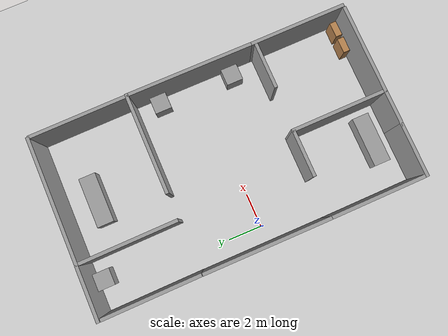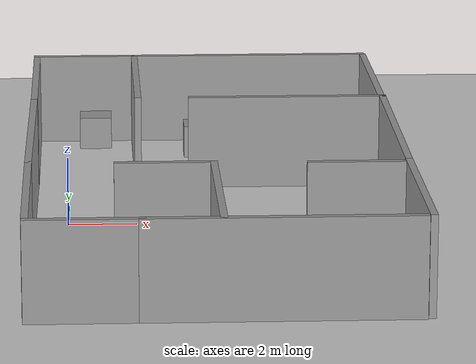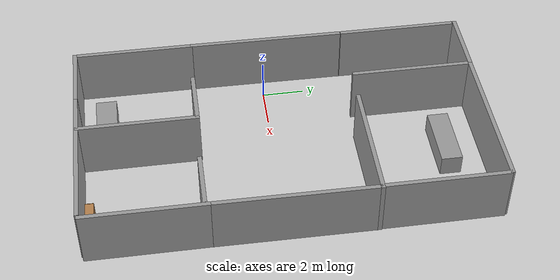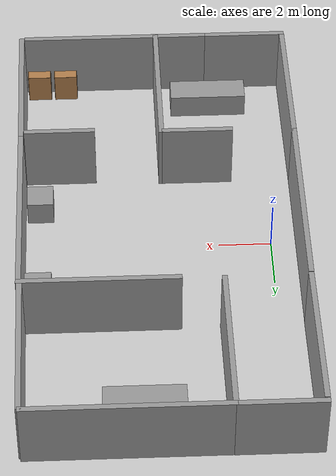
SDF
<sdf version="1.6">
 <world name="default">
  <light name="sun" type="directional">
   <pose>0 0 10 0 -0 0</pose>
   <diffuse>0.8 0.8 0.8 1</diffuse>
   <specular>0.1 0.1 0.1 1</specular>
   <attenuation>
    <range>1000</range>
    <constant>0.9</constant>
    <linear>0.01</linear>
    <quadratic>0.001</quadratic>
   </attenuation>
   <direction>-0.5 0.5 -1</direction>
  </light>
  <model name="ground_plane">
   <static>1</static>
   <link name="link">
    <collision name="collision">
     <geometry><plane><normal>0 0 1</normal><size>100 100</size></plane></geometry>
     <surface><friction><ode><mu>100</mu><mu2>50</mu2></ode></friction></surface>
    </collision>
    <visual name="visual">
     <cast_shadows>0</cast_shadows>
     <geometry><plane><normal>0 0 1</normal><size>100 100</size></plane></geometry>
     <material>
      <script><uri>file://media/materials/scripts/gazebo.material</uri><name>Gazebo/Grey</name></script>
     </material>
    </visual>
   </link>
  </model>
  <gravity>0 0 -9.8</gravity>
  <magnetic_field>6e-06 2.3e-05 -4.2e-05</magnetic_field>
  <atmosphere type="adiabatic"/>
  <physics name="default_physics" default="0" type="ode">
   <max_step_size>0.001</max_step_size>
   <real_time_factor>1</real_time_factor>
   <real_time_update_rate>1000</real_time_update_rate>
  </physics>
  <scene><ambient>0.4 0.4 0.4 1</ambient><background>0.7 0.7 0.7 1</background><shadows>1</shadows></scene>
  <spherical_coordinates>
   <surface_model>EARTH_WGS84</surface_model>
   <latitude_deg>0</latitude_deg>
   <longitude_deg>0</longitude_deg>
   <elevation>0</elevation>
   <heading_deg>0</heading_deg>
  </spherical_coordinates>
  <model name="grey_wall_1_0">
   <link name="link">
    <pose>-0.879917 0.004192 1.4 0 -0 0</pose>
    <inertial>
     <inertia><ixx>nan</ixx><ixy>0</ixy><ixz>0</ixz><iyy>nan</iyy><iyz>0</iyz><izz>nan</izz></inertia>
     <mass>0</mass>
    </inertial>
    <visual name="visual">
     <cast_shadows>0</cast_shadows>
     <geometry><box><size>5.73869 0.2 2.8</size></box></geometry>
     <material>
      <script>
       <uri>model://grey_wall/materials/scripts</uri>
       <uri>model://grey_wall/materials/textures</uri>
       <name>vrc/grey_wall</name>
      </script>
      <ambient>1 1 1 1</ambient>
      <diffuse>1 1 1 1</diffuse>
      <specular>0 0 0 1</specular>
      <emissive>0 0 0 1</emissive>
     </material>
    </visual>
    <collision name="collision">
     <geometry><box><size>5.73869 0.2 2.8</size></box></geometry>
     <surface>
      <friction>
       <ode><mu>1</mu><mu2>1</mu2><fdir1>0 0 0</fdir1><slip1>0</slip1><slip2>0</slip2></ode>
       <torsional>
        <coefficient>1</coefficient>
        <patch_radius>0</patch_radius>
        <surface_radius>0</surface_radius>
        <use_patch_radius>1</use_patch_radius>
        <ode><slip>0</slip></ode>
       </torsional>
      </friction>
      <bounce><restitution_coefficient>0</restitution_coefficient><threshold>1e+06</threshold></bounce>
      <contact>
       <collide_without_contact>0</collide_without_contact>
       <collide_without_contact_bitmask>1</collide_without_contact_bitmask>
       <collide_bitmask>1</collide_bitmask>
       <ode>
        <soft_cfm>0</soft_cfm>
        <soft_erp>0.2</soft_erp>
        <kp>1e+13</kp>
        <kd>1</kd>
        <max_vel>0.01</max_vel>
        <min_depth>0</min_depth>
       </ode>
       <bullet>
        <split_impulse>1</split_impulse>
        <split_impulse_penetration_threshold>-0.01</split_impulse_penetration_threshold>
        <soft_cfm>0</soft_cfm>
        <soft_erp>0.2</soft_erp>
        <kp>1e+13</kp>
        <kd>1</kd>
       </bullet>
      </contact>
     </surface>
    </collision>
   </link>
   <static>1</static>
   <pose>-1.04134 6.03218 0 0 0 -1.56602</pose>
  </model>
  <model name="grey_wall_1_0_clone">
   <link name="link">
    <pose>-0.879917 0.004192 1.4 0 -0 0</pose>
    <inertial>
     <inertia><ixx>nan</ixx><ixy>0</ixy><ixz>0</ixz><iyy>nan</iyy><iyz>0</iyz><izz>nan</izz></inertia>
     <mass>0</mass>
    </inertial>
    <visual name="visual">
     <cast_shadows>0</cast_shadows>
     <geometry><box><size>5.73869 0.2 2.8</size></box></geometry>
     <material>
      <script>
       <uri>model://grey_wall/materials/scripts</uri>
       <uri>model://grey_wall/materials/textures</uri>
       <name>vrc/grey_wall</name>
      </script>
      <ambient>1 1 1 1</ambient>
      <diffuse>1 1 1 1</diffuse>
      <specular>0 0 0 1</specular>
      <emissive>0 0 0 1</emissive>
     </material>
    </visual>
    <collision name="collision">
     <geometry><box><size>5.73869 0.2 2.8</size></box></geometry>
     <surface>
      <friction>
       <ode><mu>1</mu><mu2>1</mu2><fdir1>0 0 0</fdir1><slip1>0</slip1><slip2>0</slip2></ode>
       <torsional>
        <coefficient>1</coefficient>
        <patch_radius>0</patch_radius>
        <surface_radius>0</surface_radius>
        <use_patch_radius>1</use_patch_radius>
        <ode><slip>0</slip></ode>
       </torsional>
      </friction>
      <bounce><restitution_coefficient>0</restitution_coefficient><threshold>1e+06</threshold></bounce>
      <contact>
       <collide_without_contact>0</collide_without_contact>
       <collide_without_contact_bitmask>1</collide_without_contact_bitmask>
       <collide_bitmask>1</collide_bitmask>
       <ode>
        <soft_cfm>0</soft_cfm>
        <soft_erp>0.2</soft_erp>
        <kp>1e+13</kp>
        <kd>1</kd>
        <max_vel>0.01</max_vel>
        <min_depth>0</min_depth>
       </ode>
       <bullet>
        <split_impulse>1</split_impulse>
        <split_impulse_penetration_threshold>-0.01</split_impulse_penetration_threshold>
        <soft_cfm>0</soft_cfm>
        <soft_erp>0.2</soft_erp>
        <kp>1e+13</kp>
        <kd>1</kd>
       </bullet>
      </contact>
     </surface>
    </collision>
   </link>
   <static>1</static>
   <pose>2.07739 6.07632 0 0 0 -1.56602</pose>
  </model>
  <model name="grey_wall_3_0_clone">
   <link name="link">
    <pose>0.483698 0 1.4 0 -0 0</pose>
    <inertial>
     <mass>1</mass>
     <inertia><ixx>1</ixx><ixy>0</ixy><ixz>0</ixz><iyy>1</iyy><iyz>0</iyz><izz>1</izz></inertia>
    </inertial>
    <visual name="visual">
     <cast_shadows>0</cast_shadows>
     <geometry><box><size>6 0.2 2.8</size></box></geometry>
     <material>
      <script>
       <uri>model://grey_wall/materials/scripts</uri>
       <uri>model://grey_wall/materials/textures</uri>
       <name>vrc/grey_wall</name>
      </script>
      <ambient>1 1 1 1</ambient>
      <diffuse>1 1 1 1</diffuse>
      <specular>0 0 0 1</specular>
      <emissive>0 0 0 1</emissive>
      <shader type="vertex"><normal_map>__default__</normal_map></shader>
     </material>
    </visual>
    <collision name="collision">
     <geometry><box><size>6 0.2 2.8</size></box></geometry>
     <surface>
      <friction>
       <ode><mu>1</mu><mu2>1</mu2><fdir1>0 0 0</fdir1><slip1>0</slip1><slip2>0</slip2></ode>
       <torsional>
        <coefficient>1</coefficient>
        <patch_radius>0</patch_radius>
        <surface_radius>0</surface_radius>
        <use_patch_radius>1</use_patch_radius>
        <ode><slip>0</slip></ode>
       </torsional>
      </friction>
      <bounce><restitution_coefficient>0</restitution_coefficient><threshold>1e+06</threshold></bounce>
      <contact>
       <collide_without_contact>0</collide_without_contact>
       <collide_without_contact_bitmask>1</collide_without_contact_bitmask>
       <collide_bitmask>1</collide_bitmask>
       <ode>
        <soft_cfm>0</soft_cfm>
        <soft_erp>0.2</soft_erp>
        <kp>1e+13</kp>
        <kd>1</kd>
        <max_vel>0.01</max_vel>
        <min_depth>0</min_depth>
       </ode>
       <bullet>
        <split_impulse>1</split_impulse>
        <split_impulse_penetration_threshold>-0.01</split_impulse_penetration_threshold>
        <soft_cfm>0</soft_cfm>
        <soft_erp>0.2</soft_erp>
        <kp>1e+13</kp>
        <kd>1</kd>
       </bullet>
      </contact>
     </surface>
    </collision>
   </link>
   <static>1</static>
   <pose>6.13197 4.07594 0 0 -0 0</pose>
  </model>
  <model name="grey_wall_0_clone">
   <static>1</static>
   <link name="link">
    <pose>0 0 1.4 0 -0 0</pose>
    <collision name="collision"><geometry><box><size>7.5 0.2 2.8</size></box></geometry></collision>
    <visual name="visual">
     <cast_shadows>0</cast_shadows>
     <geometry><box><size>7.5 0.2 2.8</size></box></geometry>
     <material>
      <script>
       <uri>model://grey_wall/materials/scripts</uri>
       <uri>model://grey_wall/materials/textures</uri>
       <name>vrc/grey_wall</name>
      </script>
     </material>
    </visual>
   </link>
   <pose>5.74321 9.89996 0 0 -0 0</pose>
  </model>
  <model name="grey_wall_1_0_clone_0">
   <link name="link">
    <pose>-0.879917 0.004192 1.4 0 -0 0</pose>
    <inertial>
     <inertia><ixx>nan</ixx><ixy>0</ixy><ixz>0</ixz><iyy>nan</iyy><iyz>0</iyz><izz>nan</izz></inertia>
     <mass>0</mass>
    </inertial>
    <visual name="visual">
     <cast_shadows>0</cast_shadows>
     <geometry><box><size>5.73869 0.2 2.8</size></box></geometry>
     <material>
      <script>
       <uri>model://grey_wall/materials/scripts</uri>
       <uri>model://grey_wall/materials/textures</uri>
       <name>vrc/grey_wall</name>
      </script>
      <ambient>1 1 1 1</ambient>
      <diffuse>1 1 1 1</diffuse>
      <specular>0 0 0 1</specular>
      <emissive>0 0 0 1</emissive>
     </material>
    </visual>
    <collision name="collision">
     <geometry><box><size>5.73869 0.2 2.8</size></box></geometry>
     <surface>
      <friction>
       <ode><mu>1</mu><mu2>1</mu2><fdir1>0 0 0</fdir1><slip1>0</slip1><slip2>0</slip2></ode>
       <torsional>
        <coefficient>1</coefficient>
        <patch_radius>0</patch_radius>
        <surface_radius>0</surface_radius>
        <use_patch_radius>1</use_patch_radius>
        <ode><slip>0</slip></ode>
       </torsional>
      </friction>
      <bounce><restitution_coefficient>0</restitution_coefficient><threshold>1e+06</threshold></bounce>
      <contact>
       <collide_without_contact>0</collide_without_contact>
       <collide_without_contact_bitmask>1</collide_without_contact_bitmask>
       <collide_bitmask>1</collide_bitmask>
       <ode>
        <soft_cfm>0</soft_cfm>
        <soft_erp>0.2</soft_erp>
        <kp>1e+13</kp>
        <kd>1</kd>
        <max_vel>0.01</max_vel>
        <min_depth>0</min_depth>
       </ode>
       <bullet>
        <split_impulse>1</split_impulse>
        <split_impulse_penetration_threshold>-0.01</split_impulse_penetration_threshold>
        <soft_cfm>0</soft_cfm>
        <soft_erp>0.2</soft_erp>
        <kp>1e+13</kp>
        <kd>1</kd>
       </bullet>
      </contact>
     </surface>
    </collision>
   </link>
   <static>1</static>
   <pose>9.46553 6.14592 0 0 0 -1.56602</pose>
  </model>
  <model name="grey_wall_4">
   <static>1</static>
   <link name="link">
    <pose>0 0 1.4 0 -0 0</pose>
    <collision name="collision"><geometry><box><size>7.5 0.2 2.8</size></box></geometry></collision>
    <visual name="visual">
     <cast_shadows>0</cast_shadows>
     <geometry><box><size>7.5 0.2 2.8</size></box></geometry>
     <material>
      <script>
       <uri>model://grey_wall/materials/scripts</uri>
       <uri>model://grey_wall/materials/textures</uri>
       <name>vrc/grey_wall</name>
      </script>
     </material>
    </visual>
   </link>
   <pose>-1.04497 0.268217 0 0 0 -1.5735</pose>
  </model>
  <model name="grey_wall_4_clone">
   <static>1</static>
   <link name="link">
    <pose>0 0 1.4 0 -0 0</pose>
    <collision name="collision"><geometry><box><size>7.5 0.2 2.8</size></box></geometry></collision>
    <visual name="visual">
     <cast_shadows>0</cast_shadows>
     <geometry><box><size>7.5 0.2 2.8</size></box></geometry>
     <material>
      <script>
       <uri>model://grey_wall/materials/scripts</uri>
       <uri>model://grey_wall/materials/textures</uri>
       <name>vrc/grey_wall</name>
      </script>
     </material>
    </visual>
   </link>
   <pose>9.50192 0.312591 0 0 0 -1.5735</pose>
  </model>
  <model name="grey_wall_6">
   <static>1</static>
   <link name="link">
    <pose>0 0 1.4 0 -0 0</pose>
    <collision name="collision"><geometry><box><size>7.5 0.2 2.8</size></box></geometry></collision>
    <visual name="visual">
     <cast_shadows>0</cast_shadows>
     <geometry><box><size>7.5 0.2 2.8</size></box></geometry>
     <material>
      <script>
       <uri>model://grey_wall/materials/scripts</uri>
       <uri>model://grey_wall/materials/textures</uri>
       <name>vrc/grey_wall</name>
      </script>
     </material>
    </visual>
   </link>
   <pose>5.64901 -9.13525 0 0 -0 0</pose>
  </model>
  <model name="grey_wall_1_0_clone_1_clone">
   <link name="link">
    <pose>-0.879917 0.004192 1.4 0 -0 0</pose>
    <inertial>
     <inertia><ixx>nan</ixx><ixy>0</ixy><ixz>0</ixz><iyy>nan</iyy><iyz>0</iyz><izz>nan</izz></inertia>
     <mass>0</mass>
    </inertial>
    <visual name="visual">
     <cast_shadows>0</cast_shadows>
     <geometry><box><size>5.73869 0.2 2.8</size></box></geometry>
     <material>
      <script>
       <uri>model://grey_wall/materials/scripts</uri>
       <uri>model://grey_wall/materials/textures</uri>
       <name>vrc/grey_wall</name>
      </script>
      <ambient>1 1 1 1</ambient>
      <diffuse>1 1 1 1</diffuse>
      <specular>0 0 0 1</specular>
      <emissive>0 0 0 1</emissive>
     </material>
    </visual>
    <collision name="collision">
     <geometry><box><size>5.73869 0.2 2.8</size></box></geometry>
     <surface>
      <friction>
       <ode><mu>1</mu><mu2>1</mu2><fdir1>0 0 0</fdir1><slip1>0</slip1><slip2>0</slip2></ode>
       <torsional>
        <coefficient>1</coefficient>
        <patch_radius>0</patch_radius>
        <surface_radius>0</surface_radius>
        <use_patch_radius>1</use_patch_radius>
        <ode><slip>0</slip></ode>
       </torsional>
      </friction>
      <bounce><restitution_coefficient>0</restitution_coefficient><threshold>1e+06</threshold></bounce>
      <contact>
       <collide_without_contact>0</collide_without_contact>
       <collide_without_contact_bitmask>1</collide_without_contact_bitmask>
       <collide_bitmask>1</collide_bitmask>
       <ode>
        <soft_cfm>0</soft_cfm>
        <soft_erp>0.2</soft_erp>
        <kp>1e+13</kp>
        <kd>1</kd>
        <max_vel>0.01</max_vel>
        <min_depth>0</min_depth>
       </ode>
       <bullet>
        <split_impulse>1</split_impulse>
        <split_impulse_penetration_threshold>-0.01</split_impulse_penetration_threshold>
        <soft_cfm>0</soft_cfm>
        <soft_erp>0.2</soft_erp>
        <kp>1e+13</kp>
        <kd>1</kd>
       </bullet>
      </contact>
     </surface>
    </collision>
   </link>
   <static>1</static>
   <pose>-1.04156 -7.04849 0 0 0 -1.56602</pose>
  </model>
  <model name="grey_wall_1_0_clone_1_clone_0">
   <link name="link">
    <pose>-0.879917 0.004192 1.4 0 -0 0</pose>
    <inertial>
     <inertia><ixx>nan</ixx><ixy>0</ixy><ixz>0</ixz><iyy>nan</iyy><iyz>0</iyz><izz>nan</izz></inertia>
     <mass>0</mass>
    </inertial>
    <visual name="visual">
     <cast_shadows>0</cast_shadows>
     <geometry><box><size>5.73869 0.2 2.8</size></box></geometry>
     <material>
      <script>
       <uri>model://grey_wall/materials/scripts</uri>
       <uri>model://grey_wall/materials/textures</uri>
       <name>vrc/grey_wall</name>
      </script>
      <ambient>1 1 1 1</ambient>
      <diffuse>1 1 1 1</diffuse>
      <specular>0 0 0 1</specular>
      <emissive>0 0 0 1</emissive>
     </material>
    </visual>
    <collision name="collision">
     <geometry><box><size>5.73869 0.2 2.8</size></box></geometry>
     <surface>
      <friction>
       <ode><mu>1</mu><mu2>1</mu2><fdir1>0 0 0</fdir1><slip1>0</slip1><slip2>0</slip2></ode>
       <torsional>
        <coefficient>1</coefficient>
        <patch_radius>0</patch_radius>
        <surface_radius>0</surface_radius>
        <use_patch_radius>1</use_patch_radius>
        <ode><slip>0</slip></ode>
       </torsional>
      </friction>
      <bounce><restitution_coefficient>0</restitution_coefficient><threshold>1e+06</threshold></bounce>
      <contact>
       <collide_without_contact>0</collide_without_contact>
       <collide_without_contact_bitmask>1</collide_without_contact_bitmask>
       <collide_bitmask>1</collide_bitmask>
       <ode>
        <soft_cfm>0</soft_cfm>
        <soft_erp>0.2</soft_erp>
        <kp>1e+13</kp>
        <kd>1</kd>
        <max_vel>0.01</max_vel>
        <min_depth>0</min_depth>
       </ode>
       <bullet>
        <split_impulse>1</split_impulse>
        <split_impulse_penetration_threshold>-0.01</split_impulse_penetration_threshold>
        <soft_cfm>0</soft_cfm>
        <soft_erp>0.2</soft_erp>
        <kp>1e+13</kp>
        <kd>1</kd>
       </bullet>
      </contact>
     </surface>
    </collision>
   </link>
   <static>1</static>
   <pose>4.08507 -7.20747 0 0 0 -1.56602</pose>
  </model>
  <model name="grey_wall_1_0_clone_1_clone_1">
   <link name="link">
    <pose>-0.879917 0.004192 1.4 0 -0 0</pose>
    <inertial>
     <inertia><ixx>nan</ixx><ixy>0</ixy><ixz>0</ixz><iyy>nan</iyy><iyz>0</iyz><izz>nan</izz></inertia>
     <mass>0</mass>
    </inertial>
    <visual name="visual">
     <cast_shadows>0</cast_shadows>
     <geometry><box><size>5.73869 0.2 2.8</size></box></geometry>
     <material>
      <script>
       <uri>model://grey_wall/materials/scripts</uri>
       <uri>model://grey_wall/materials/textures</uri>
       <name>vrc/grey_wall</name>
      </script>
      <ambient>1 1 1 1</ambient>
      <diffuse>1 1 1 1</diffuse>
      <specular>0 0 0 1</specular>
      <emissive>0 0 0 1</emissive>
     </material>
    </visual>
    <collision name="collision">
     <geometry><box><size>5.73869 0.2 2.8</size></box></geometry>
     <surface>
      <friction>
       <ode><mu>1</mu><mu2>1</mu2><fdir1>0 0 0</fdir1><slip1>0</slip1><slip2>0</slip2></ode>
       <torsional>
        <coefficient>1</coefficient>
        <patch_radius>0</patch_radius>
        <surface_radius>0</surface_radius>
        <use_patch_radius>1</use_patch_radius>
        <ode><slip>0</slip></ode>
       </torsional>
      </friction>
      <bounce><restitution_coefficient>0</restitution_coefficient><threshold>1e+06</threshold></bounce>
      <contact>
       <collide_without_contact>0</collide_without_contact>
       <collide_without_contact_bitmask>1</collide_without_contact_bitmask>
       <collide_bitmask>1</collide_bitmask>
       <ode>
        <soft_cfm>0</soft_cfm>
        <soft_erp>0.2</soft_erp>
        <kp>1e+13</kp>
        <kd>1</kd>
        <max_vel>0.01</max_vel>
        <min_depth>0</min_depth>
       </ode>
       <bullet>
        <split_impulse>1</split_impulse>
        <split_impulse_penetration_threshold>-0.01</split_impulse_penetration_threshold>
        <soft_cfm>0</soft_cfm>
        <soft_erp>0.2</soft_erp>
        <kp>1e+13</kp>
        <kd>1</kd>
       </bullet>
      </contact>
     </surface>
    </collision>
   </link>
   <static>1</static>
   <pose>9.50201 -7.17553 0 0 0 -1.56602</pose>
  </model>
  <model name="grey_wall_7_0_clone">
   <link name="link">
    <pose>-2.41199 -0.163788 1.4 0 -0 0</pose>
    <inertial>
     <inertia><ixx>nan</ixx><ixy>0</ixy><ixz>0</ixz><iyy>nan</iyy><iyz>0</iyz><izz>nan</izz></inertia>
     <mass>0</mass>
    </inertial>
    <visual name="visual">
     <cast_shadows>0</cast_shadows>
     <geometry><box><size>2.74092 0.2 2.8</size></box></geometry>
     <material>
      <script>
       <uri>model://grey_wall/materials/scripts</uri>
       <uri>model://grey_wall/materials/textures</uri>
       <name>vrc/grey_wall</name>
      </script>
      <ambient>1 1 1 1</ambient>
      <diffuse>1 1 1 1</diffuse>
      <specular>0 0 0 1</specular>
      <emissive>0 0 0 1</emissive>
     </material>
    </visual>
    <collision name="collision">
     <geometry><box><size>2.74092 0.2 2.8</size></box></geometry>
     <surface>
      <friction>
       <ode><mu>1</mu><mu2>1</mu2><fdir1>0 0 0</fdir1><slip1>0</slip1><slip2>0</slip2></ode>
       <torsional>
        <coefficient>1</coefficient>
        <patch_radius>0</patch_radius>
        <surface_radius>0</surface_radius>
        <use_patch_radius>1</use_patch_radius>
        <ode><slip>0</slip></ode>
       </torsional>
      </friction>
      <bounce><restitution_coefficient>0</restitution_coefficient><threshold>1e+06</threshold></bounce>
      <contact>
       <collide_without_contact>0</collide_without_contact>
       <collide_without_contact_bitmask>1</collide_without_contact_bitmask>
       <collide_bitmask>1</collide_bitmask>
       <ode>
        <soft_cfm>0</soft_cfm>
        <soft_erp>0.2</soft_erp>
        <kp>1e+13</kp>
        <kd>1</kd>
        <max_vel>0.01</max_vel>
        <min_depth>0</min_depth>
       </ode>
       <bullet>
        <split_impulse>1</split_impulse>
        <split_impulse_penetration_threshold>-0.01</split_impulse_penetration_threshold>
        <soft_cfm>0</soft_cfm>
        <soft_erp>0.2</soft_erp>
        <kp>1e+13</kp>
        <kd>1</kd>
       </bullet>
      </contact>
     </surface>
    </collision>
   </link>
   <static>1</static>
   <pose>10.4247 -3.51327 0 0 -0 0</pose>
  </model>
  <model name="grey_wall_7_0_clone_0">
   <link name="link">
    <pose>-2.41199 -0.163788 1.4 0 -0 0</pose>
    <inertial>
     <inertia><ixx>nan</ixx><ixy>0</ixy><ixz>0</ixz><iyy>nan</iyy><iyz>0</iyz><izz>nan</izz></inertia>
     <mass>0</mass>
    </inertial>
    <visual name="visual">
     <cast_shadows>0</cast_shadows>
     <geometry><box><size>2.74092 0.2 2.8</size></box></geometry>
     <material>
      <script>
       <uri>model://grey_wall/materials/scripts</uri>
       <uri>model://grey_wall/materials/textures</uri>
       <name>vrc/grey_wall</name>
      </script>
      <ambient>1 1 1 1</ambient>
      <diffuse>1 1 1 1</diffuse>
      <specular>0 0 0 1</specular>
      <emissive>0 0 0 1</emissive>
     </material>
    </visual>
    <collision name="collision">
     <geometry><box><size>2.74092 0.2 2.8</size></box></geometry>
     <surface>
      <friction>
       <ode><mu>1</mu><mu2>1</mu2><fdir1>0 0 0</fdir1><slip1>0</slip1><slip2>0</slip2></ode>
       <torsional>
        <coefficient>1</coefficient>
        <patch_radius>0</patch_radius>
        <surface_radius>0</surface_radius>
        <use_patch_radius>1</use_patch_radius>
        <ode><slip>0</slip></ode>
       </torsional>
      </friction>
      <bounce><restitution_coefficient>0</restitution_coefficient><threshold>1e+06</threshold></bounce>
      <contact>
       <collide_without_contact>0</collide_without_contact>
       <collide_without_contact_bitmask>1</collide_without_contact_bitmask>
       <collide_bitmask>1</collide_bitmask>
       <ode>
        <soft_cfm>0</soft_cfm>
        <soft_erp>0.2</soft_erp>
        <kp>1e+13</kp>
        <kd>1</kd>
        <max_vel>0.01</max_vel>
        <min_depth>0</min_depth>
       </ode>
       <bullet>
        <split_impulse>1</split_impulse>
        <split_impulse_penetration_threshold>-0.01</split_impulse_penetration_threshold>
        <soft_cfm>0</soft_cfm>
        <soft_erp>0.2</soft_erp>
        <kp>1e+13</kp>
        <kd>1</kd>
       </bullet>
      </contact>
     </surface>
    </collision>
   </link>
   <static>1</static>
   <pose>5.09144 -3.39147 0 0 -0 0</pose>
  </model>
  <model name="bookshelf">
   <static>1</static>
   <link name="link">
    <inertial><mass>1</mass></inertial>
    <collision name="back">
     <pose>0 0.005 0.6 0 -0 0</pose>
     <geometry><box><size>0.9 0.01 1.2</size></box></geometry>
    </collision>
    <visual name="visual1">
     <pose>0 0.005 0.6 0 -0 0</pose>
     <geometry><box><size>0.9 0.01 1.2</size></box></geometry>
     <material>
      <script><uri>file://media/materials/scripts/gazebo.material</uri><name>Gazebo/Wood</name></script>
     </material>
    </visual>
    <collision name="left_side">
     <pose>0.45 -0.195 0.6 0 -0 0</pose>
     <geometry><box><size>0.02 0.4 1.2</size></box></geometry>
    </collision>
    <visual name="visual2">
     <pose>0.45 -0.195 0.6 0 -0 0</pose>
     <geometry><box><size>0.02 0.4 1.2</size></box></geometry>
     <material>
      <script><uri>file://media/materials/scripts/gazebo.material</uri><name>Gazebo/Wood</name></script>
     </material>
    </visual>
    <collision name="right_side">
     <pose>-0.45 -0.195 0.6 0 -0 0</pose>
     <geometry><box><size>0.02 0.4 1.2</size></box></geometry>
    </collision>
    <visual name="visual3">
     <pose>-0.45 -0.195 0.6 0 -0 0</pose>
     <geometry><box><size>0.02 0.4 1.2</size></box></geometry>
     <material>
      <script><uri>file://media/materials/scripts/gazebo.material</uri><name>Gazebo/Wood</name></script>
     </material>
    </visual>
    <collision name="bottom">
     <pose>0 -0.195 0.03 0 -0 0</pose>
     <geometry><box><size>0.88 0.4 0.06</size></box></geometry>
    </collision>
    <visual name="visual4">
     <pose>0 -0.195 0.03 0 -0 0</pose>
     <geometry><box><size>0.88 0.4 0.06</size></box></geometry>
     <material>
      <script><uri>file://media/materials/scripts/gazebo.material</uri><name>Gazebo/Wood</name></script>
     </material>
    </visual>
    <collision name="top">
     <pose>0 -0.195 1.19 0 -0 0</pose>
     <geometry><box><size>0.88 0.4 0.02</size></box></geometry>
    </collision>
    <visual name="visual5">
     <pose>0 -0.195 1.19 0 -0 0</pose>
     <geometry><box><size>0.88 0.4 0.02</size></box></geometry>
     <material>
      <script><uri>file://media/materials/scripts/gazebo.material</uri><name>Gazebo/Wood</name></script>
     </material>
    </visual>
    <collision name="low_shelf">
     <pose>0 -0.195 0.43 0 -0 0</pose>
     <geometry><box><size>0.88 0.4 0.02</size></box></geometry>
    </collision>
    <visual name="visual6">
     <pose>0 -0.195 0.43 0 -0 0</pose>
     <geometry><box><size>0.88 0.4 0.02</size></box></geometry>
     <material>
      <script><uri>file://media/materials/scripts/gazebo.material</uri><name>Gazebo/Wood</name></script>
     </material>
    </visual>
    <collision name="high_shelf">
     <pose>0 -0.195 0.8 0 -0 0</pose>
     <geometry><box><size>0.88 0.4 0.02</size></box></geometry>
    </collision>
    <visual name="visual7">
     <pose>0 -0.195 0.8 0 -0 0</pose>
     <geometry><box><size>0.88 0.4 0.02</size></box></geometry>
     <material>
      <script><uri>file://media/materials/scripts/gazebo.material</uri><name>Gazebo/Wood</name></script>
     </material>
    </visual>
   </link>
   <pose>8.86128 -8.5537 0 0 -0 0</pose>
  </model>
  <model name="bookshelf_clone">
   <static>1</static>
   <link name="link">
    <inertial><mass>1</mass></inertial>
    <collision name="back">
     <pose>0 0.005 0.6 0 -0 0</pose>
     <geometry><box><size>0.9 0.01 1.2</size></box></geometry>
    </collision>
    <visual name="visual1">
     <pose>0 0.005 0.6 0 -0 0</pose>
     <geometry><box><size>0.9 0.01 1.2</size></box></geometry>
     <material>
      <script><uri>file://media/materials/scripts/gazebo.material</uri><name>Gazebo/Wood</name></script>
     </material>
    </visual>
    <collision name="left_side">
     <pose>0.45 -0.195 0.6 0 -0 0</pose>
     <geometry><box><size>0.02 0.4 1.2</size></box></geometry>
    </collision>
    <visual name="visual2">
     <pose>0.45 -0.195 0.6 0 -0 0</pose>
     <geometry><box><size>0.02 0.4 1.2</size></box></geometry>
     <material>
      <script><uri>file://media/materials/scripts/gazebo.material</uri><name>Gazebo/Wood</name></script>
     </material>
    </visual>
    <collision name="right_side">
     <pose>-0.45 -0.195 0.6 0 -0 0</pose>
     <geometry><box><size>0.02 0.4 1.2</size></box></geometry>
    </collision>
    <visual name="visual3">
     <pose>-0.45 -0.195 0.6 0 -0 0</pose>
     <geometry><box><size>0.02 0.4 1.2</size></box></geometry>
     <material>
      <script><uri>file://media/materials/scripts/gazebo.material</uri><name>Gazebo/Wood</name></script>
     </material>
    </visual>
    <collision name="bottom">
     <pose>0 -0.195 0.03 0 -0 0</pose>
     <geometry><box><size>0.88 0.4 0.06</size></box></geometry>
    </collision>
    <visual name="visual4">
     <pose>0 -0.195 0.03 0 -0 0</pose>
     <geometry><box><size>0.88 0.4 0.06</size></box></geometry>
     <material>
      <script><uri>file://media/materials/scripts/gazebo.material</uri><name>Gazebo/Wood</name></script>
     </material>
    </visual>
    <collision name="top">
     <pose>0 -0.195 1.19 0 -0 0</pose>
     <geometry><box><size>0.88 0.4 0.02</size></box></geometry>
    </collision>
    <visual name="visual5">
     <pose>0 -0.195 1.19 0 -0 0</pose>
     <geometry><box><size>0.88 0.4 0.02</size></box></geometry>
     <material>
      <script><uri>file://media/materials/scripts/gazebo.material</uri><name>Gazebo/Wood</name></script>
     </material>
    </visual>
    <collision name="low_shelf">
     <pose>0 -0.195 0.43 0 -0 0</pose>
     <geometry><box><size>0.88 0.4 0.02</size></box></geometry>
    </collision>
    <visual name="visual6">
     <pose>0 -0.195 0.43 0 -0 0</pose>
     <geometry><box><size>0.88 0.4 0.02</size></box></geometry>
     <material>
      <script><uri>file://media/materials/scripts/gazebo.material</uri><name>Gazebo/Wood</name></script>
     </material>
    </visual>
    <collision name="high_shelf">
     <pose>0 -0.195 0.8 0 -0 0</pose>
     <geometry><box><size>0.88 0.4 0.02</size></box></geometry>
    </collision>
    <visual name="visual7">
     <pose>0 -0.195 0.8 0 -0 0</pose>
     <geometry><box><size>0.88 0.4 0.02</size></box></geometry>
     <material>
      <script><uri>file://media/materials/scripts/gazebo.material</uri><name>Gazebo/Wood</name></script>
     </material>
    </visual>
   </link>
   <pose>7.79663 -8.55307 0 0 -0 0</pose>
  </model>
  <model name="grey_wall_0_0">
   <link name="link">
    <pose>2.23965 0 1.4 0 -0 0</pose>
    <inertial>
     <inertia><ixx>nan</ixx><ixy>0</ixy><ixz>0</ixz><iyy>nan</iyy><iyz>0</iyz><izz>nan</izz></inertia>
     <mass>0</mass>
    </inertial>
    <visual name="visual">
     <cast_shadows>0</cast_shadows>
     <geometry><box><size>3.20643 0.2 2.8</size></box></geometry>
     <material>
      <script>
       <uri>model://grey_wall/materials/scripts</uri>
       <uri>model://grey_wall/materials/textures</uri>
       <name>vrc/grey_wall</name>
      </script>
      <ambient>1 1 1 1</ambient>
      <diffuse>1 1 1 1</diffuse>
      <specular>0 0 0 1</specular>
      <emissive>0 0 0 1</emissive>
     </material>
    </visual>
    <collision name="collision">
     <geometry><box><size>3.20643 0.2 2.8</size></box></geometry>
     <surface>
      <friction>
       <ode><mu>1</mu><mu2>1</mu2><fdir1>0 0 0</fdir1><slip1>0</slip1><slip2>0</slip2></ode>
       <torsional>
        <coefficient>1</coefficient>
        <patch_radius>0</patch_radius>
        <surface_radius>0</surface_radius>
        <use_patch_radius>1</use_patch_radius>
        <ode><slip>0</slip></ode>
       </torsional>
      </friction>
      <bounce><restitution_coefficient>0</restitution_coefficient><threshold>1e+06</threshold></bounce>
      <contact>
       <collide_without_contact>0</collide_without_contact>
       <collide_without_contact_bitmask>1</collide_without_contact_bitmask>
       <collide_bitmask>1</collide_bitmask>
       <ode>
        <soft_cfm>0</soft_cfm>
        <soft_erp>0.2</soft_erp>
        <kp>1e+13</kp>
        <kd>1</kd>
        <max_vel>0.01</max_vel>
        <min_depth>0</min_depth>
       </ode>
       <bullet>
        <split_impulse>1</split_impulse>
        <split_impulse_penetration_threshold>-0.01</split_impulse_penetration_threshold>
        <soft_cfm>0</soft_cfm>
        <soft_erp>0.2</soft_erp>
        <kp>1e+13</kp>
        <kd>1</kd>
       </bullet>
      </contact>
     </surface>
    </collision>
   </link>
   <static>1</static>
   <pose>-1.78768 9.90944 0 0 -0 0</pose>
  </model>
  <model name="grey_wall_0_0_clone">
   <link name="link">
    <pose>2.23965 0 1.4 0 -0 0</pose>
    <inertial>
     <inertia><ixx>nan</ixx><ixy>0</ixy><ixz>0</ixz><iyy>nan</iyy><iyz>0</iyz><izz>nan</izz></inertia>
     <mass>0</mass>
    </inertial>
    <visual name="visual">
     <cast_shadows>0</cast_shadows>
     <geometry><box><size>3.20643 0.2 2.8</size></box></geometry>
     <material>
      <script>
       <uri>model://grey_wall/materials/scripts</uri>
       <uri>model://grey_wall/materials/textures</uri>
       <name>vrc/grey_wall</name>
      </script>
      <ambient>1 1 1 1</ambient>
      <diffuse>1 1 1 1</diffuse>
      <specular>0 0 0 1</specular>
      <emissive>0 0 0 1</emissive>
     </material>
    </visual>
    <collision name="collision">
     <geometry><box><size>3.20643 0.2 2.8</size></box></geometry>
     <surface>
      <friction>
       <ode><mu>1</mu><mu2>1</mu2><fdir1>0 0 0</fdir1><slip1>0</slip1><slip2>0</slip2></ode>
       <torsional>
        <coefficient>1</coefficient>
        <patch_radius>0</patch_radius>
        <surface_radius>0</surface_radius>
        <use_patch_radius>1</use_patch_radius>
        <ode><slip>0</slip></ode>
       </torsional>
      </friction>
      <bounce><restitution_coefficient>0</restitution_coefficient><threshold>1e+06</threshold></bounce>
      <contact>
       <collide_without_contact>0</collide_without_contact>
       <collide_without_contact_bitmask>1</collide_without_contact_bitmask>
       <collide_bitmask>1</collide_bitmask>
       <ode>
        <soft_cfm>0</soft_cfm>
        <soft_erp>0.2</soft_erp>
        <kp>1e+13</kp>
        <kd>1</kd>
        <max_vel>0.01</max_vel>
        <min_depth>0</min_depth>
       </ode>
       <bullet>
        <split_impulse>1</split_impulse>
        <split_impulse_penetration_threshold>-0.01</split_impulse_penetration_threshold>
        <soft_cfm>0</soft_cfm>
        <soft_erp>0.2</soft_erp>
        <kp>1e+13</kp>
        <kd>1</kd>
       </bullet>
      </contact>
     </surface>
    </collision>
   </link>
   <static>1</static>
   <pose>-1.75099 -9.1324 0 0 -0 0</pose>
  </model>
  <model name="unit_box_0_0">
   <link name="link">
    <inertial>
     <mass>3.00518</mass>
     <inertia><ixx>0.500864</ixx><ixy>0</ixy><ixz>0</ixz><iyy>2.51211</iyy><iyz>0</iyz><izz>2.51211</izz></inertia>
    </inertial>
    <visual name="visual">
     <geometry><box><size>3.00518 1 1</size></box></geometry>
     <material>
      <script><name>Gazebo/Grey</name><uri>file://media/materials/scripts/gazebo.material</uri></script>
      <ambient>0.3 0.3 0.3 1</ambient>
      <diffuse>0.7 0.7 0.7 1</diffuse>
      <specular>0.01 0.01 0.01 1</specular>
      <emissive>0 0 0 1</emissive>
     </material>
    </visual>
    <collision name="collision">
     <geometry><box><size>3.00518 1 1</size></box></geometry>
     <surface>
      <friction>
       <ode><mu>1</mu><mu2>1</mu2><fdir1>0 0 0</fdir1><slip1>0</slip1><slip2>0</slip2></ode>
       <torsional>
        <coefficient>1</coefficient>
        <patch_radius>0</patch_radius>
        <surface_radius>0</surface_radius>
        <use_patch_radius>1</use_patch_radius>
        <ode><slip>0</slip></ode>
       </torsional>
      </friction>
      <bounce><restitution_coefficient>0</restitution_coefficient><threshold>1e+06</threshold></bounce>
      <contact>
       <collide_without_contact>0</collide_without_contact>
       <collide_without_contact_bitmask>1</collide_without_contact_bitmask>
       <collide_bitmask>1</collide_bitmask>
       <ode>
        <soft_cfm>0</soft_cfm>
        <soft_erp>0.2</soft_erp>
        <kp>1e+13</kp>
        <kd>1</kd>
        <max_vel>0.01</max_vel>
        <min_depth>0</min_depth>
       </ode>
       <bullet>
        <split_impulse>1</split_impulse>
        <split_impulse_penetration_threshold>-0.01</split_impulse_penetration_threshold>
        <soft_cfm>0</soft_cfm>
        <soft_erp>0.2</soft_erp>
        <kp>1e+13</kp>
        <kd>1</kd>
       </bullet>
      </contact>
     </surface>
    </collision>
   </link>
   <static>0</static>
   <pose>5.10293 8.07754 0.5 0 -0 0</pose>
  </model>
  <model name="unit_box_0_0_clone">
   <link name="link">
    <inertial>
     <mass>3.00518</mass>
     <inertia><ixx>0.500864</ixx><ixy>0</ixy><ixz>0</ixz><iyy>2.51211</iyy><iyz>0</iyz><izz>2.51211</izz></inertia>
    </inertial>
    <visual name="visual">
     <geometry><box><size>3.00518 1 1</size></box></geometry>
     <material>
      <script><name>Gazebo/Grey</name><uri>file://media/materials/scripts/gazebo.material</uri></script>
      <ambient>0.3 0.3 0.3 1</ambient>
      <diffuse>0.7 0.7 0.7 1</diffuse>
      <specular>0.01 0.01 0.01 1</specular>
      <emissive>0 0 0 1</emissive>
     </material>
    </visual>
    <collision name="collision">
     <geometry><box><size>3.00518 1 1</size></box></geometry>
     <surface>
      <friction>
       <ode><mu>1</mu><mu2>1</mu2><fdir1>0 0 0</fdir1><slip1>0</slip1><slip2>0</slip2></ode>
       <torsional>
        <coefficient>1</coefficient>
        <patch_radius>0</patch_radius>
        <surface_radius>0</surface_radius>
        <use_patch_radius>1</use_patch_radius>
        <ode><slip>0</slip></ode>
       </torsional>
      </friction>
      <bounce><restitution_coefficient>0</restitution_coefficient><threshold>1e+06</threshold></bounce>
      <contact>
       <collide_without_contact>0</collide_without_contact>
       <collide_without_contact_bitmask>1</collide_without_contact_bitmask>
       <collide_bitmask>1</collide_bitmask>
       <ode>
        <soft_cfm>0</soft_cfm>
        <soft_erp>0.2</soft_erp>
        <kp>1e+13</kp>
        <kd>1</kd>
        <max_vel>0.01</max_vel>
        <min_depth>0</min_depth>
       </ode>
       <bullet>
        <split_impulse>1</split_impulse>
        <split_impulse_penetration_threshold>-0.01</split_impulse_penetration_threshold>
        <soft_cfm>0</soft_cfm>
        <soft_erp>0.2</soft_erp>
        <kp>1e+13</kp>
        <kd>1</kd>
       </bullet>
      </contact>
     </surface>
    </collision>
   </link>
   <static>0</static>
   <pose>2.0279 -7.84307 0.5 0 -0 0</pose>
  </model>
  <model name="unit_box_0_1">
   <pose>8.88796 2.54915 0.5 0 -0 0</pose>
   <link name="link">
    <inertial>
     <mass>1</mass>
     <inertia>
      <ixx>0.166667</ixx>
      <ixy>0</ixy>
      <ixz>0</ixz>
      <iyy>0.166667</iyy>
      <iyz>0</iyz>
      <izz>0.166667</izz>
     </inertia>
    </inertial>
    <collision name="collision"><geometry><box><size>1 1 1</size></box></geometry></collision>
    <visual name="visual">
     <geometry><box><size>1 1 1</size></box></geometry>
     <material>
      <script><name>Gazebo/Grey</name><uri>file://media/materials/scripts/gazebo.material</uri></script>
     </material>
    </visual>
   </link>
  </model>
  <model name="unit_box_0_2">
   <pose>8.81598 -1.97189 0.5 0 -0 0</pose>
   <link name="link">
    <inertial>
     <mass>1</mass>
     <inertia>
      <ixx>0.166667</ixx>
      <ixy>0</ixy>
      <ixz>0</ixz>
      <iyy>0.166667</iyy>
      <iyz>0</iyz>
      <izz>0.166667</izz>
     </inertia>
    </inertial>
    <collision name="collision"><geometry><box><size>1 1 1</size></box></geometry></collision>
    <visual name="visual">
     <geometry><box><size>1 1 1</size></box></geometry>
     <material>
      <script><name>Gazebo/Grey</name><uri>file://media/materials/scripts/gazebo.material</uri></script>
     </material>
    </visual>
   </link>
  </model>
  <model name="unit_box_0_3">
   <pose>0.804811 9.30866 0.5 0 -0 0</pose>
   <link name="link">
    <inertial>
     <mass>1</mass>
     <inertia>
      <ixx>0.166667</ixx>
      <ixy>0</ixy>
      <ixz>0</ixz>
      <iyy>0.166667</iyy>
      <iyz>0</iyz>
      <izz>0.166667</izz>
     </inertia>
    </inertial>
    <collision name="collision"><geometry><box><size>1 1 1</size></box></geometry></collision>
    <visual name="visual">
     <geometry><box><size>1 1 1</size></box></geometry>
     <material>
      <script><name>Gazebo/Grey</name><uri>file://media/materials/scripts/gazebo.material</uri></script>
     </material>
    </visual>
   </link>
  </model>
 </world>
</sdf>
